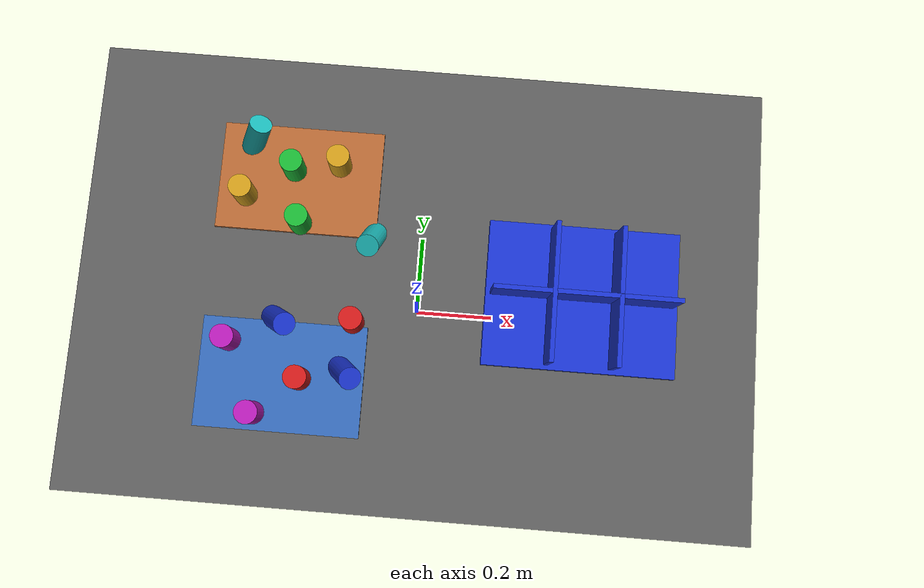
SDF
<?xml version="1.0" ?>
<sdf version="1.9">
  <!-- Standalone M1B scene.  The controller-backed Panda is spawned by the
       existing launch path; this file never alters the frozen M1A cube world. -->
  <world name="industrial_cylinder_v1">
    <physics name="bullet" type="bullet"><max_step_size>0.001</max_step_size><real_time_factor>1.0</real_time_factor></physics>
    <plugin name="gz::sim::systems::Physics" filename="gz-sim-physics-system"><engine><filename>gz-physics-bullet-featherstone-plugin</filename></engine></plugin>
    <plugin name="gz::sim::systems::UserCommands" filename="gz-sim-user-commands-system"/>
    <plugin name="gz::sim::systems::SceneBroadcaster" filename="gz-sim-scene-broadcaster-system"/>
    <plugin name="gz::sim::systems::Sensors" filename="gz-sim-sensors-system"><render_engine>ogre2</render_engine></plugin>
    <gravity>0 0 -9.81</gravity>
    <light type="directional" name="industrial_light"><pose>0 0 5 0 0 0</pose><direction>-0.3 0.2 -0.9</direction><diffuse>0.9 0.9 0.9 1</diffuse></light>
    <model name="industrial_work_table"><static>true</static><link name="link"><pose>0 0 0.4 0 0 0</pose><collision name="collision"><geometry><box><size>1.5 1.0 0.1</size></box></geometry></collision><visual name="visual"><geometry><box><size>1.5 1.0 0.1</size></box></geometry><material><diffuse>0.35 0.35 0.35 1</diffuse></material></visual></link></model>
    <model name="camera_fixture"><static>true</static><link name="camera_rgbd"><pose>-0.80 -0.80 1.40 0 0.77 0.93</pose><sensor name="front_rgbd" type="rgbd_camera"><always_on>1</always_on><update_rate>15</update_rate><topic>/xh/camera/rgbd</topic><camera><horizontal_fov>1.047</horizontal_fov><image><width>640</width><height>480</height><format>R8G8B8</format></image><clip><near>0.1</near><far>4.0</far></clip></camera></sensor></link></model>
    <model name="incoming_zone_a"><static>true</static><link name="link"><pose>-0.28 -0.22 0.455 0 0 0</pose><visual name="visual"><geometry><box><size>0.36 0.24 0.01</size></box></geometry><material><diffuse>0.2 0.4 0.7 1</diffuse></material></visual></link></model>
    <model name="incoming_zone_b"><static>true</static><link name="link"><pose>-0.28 0.22 0.455 0 0 0</pose><visual name="visual"><geometry><box><size>0.36 0.24 0.01</size></box></geometry><material><diffuse>0.7 0.4 0.2 1</diffuse></material></visual></link></model>
    <!-- M1B_RANDOM_PARTS_BEGIN -->
    <model name="cylinder_01"><pose>-0.2382 -0.2223 0.5000 0.0000 0.0000 1.9460</pose><link name="link"><inertial><mass>0.06</mass></inertial><collision name="collision"><geometry><cylinder><radius>0.025</radius><length>0.09</length></cylinder></geometry></collision><visual name="visual"><geometry><cylinder><radius>0.025</radius><length>0.09</length></cylinder></geometry><material><diffuse>0.800 0.100 0.100 1</diffuse><specular>0.15 0.15 0.15 1</specular></material></visual></link></model>
    <model name="cylinder_02"><pose>-0.2696 0.1207 0.5000 3.1416 0.0000 -0.9007</pose><link name="link"><inertial><mass>0.06</mass></inertial><collision name="collision"><geometry><cylinder><radius>0.025</radius><length>0.09</length></cylinder></geometry></collision><visual name="visual"><geometry><cylinder><radius>0.025</radius><length>0.09</length></cylinder></geometry><material><diffuse>0.100 0.700 0.200 1</diffuse><specular>0.15 0.15 0.15 1</specular></material></visual></link></model>
    <model name="cylinder_03"><pose>-0.1423 -0.2008 0.4800 0.4500 -0.3000 1.4231</pose><link name="link"><inertial><mass>0.06</mass></inertial><collision name="collision"><geometry><cylinder><radius>0.025</radius><length>0.09</length></cylinder></geometry></collision><visual name="visual"><geometry><cylinder><radius>0.025</radius><length>0.09</length></cylinder></geometry><material><diffuse>0.100 0.200 0.800 1</diffuse><specular>0.15 0.15 0.15 1</specular></material></visual></link></model>
    <model name="cylinder_04"><pose>-0.3964 0.1752 0.5000 0.0000 0.0000 -0.5118</pose><link name="link"><inertial><mass>0.06</mass></inertial><collision name="collision"><geometry><cylinder><radius>0.025</radius><length>0.09</length></cylinder></geometry></collision><visual name="visual"><geometry><cylinder><radius>0.025</radius><length>0.09</length></cylinder></geometry><material><diffuse>0.800 0.600 0.100 1</diffuse><specular>0.15 0.15 0.15 1</specular></material></visual></link></model>
    <model name="cylinder_05"><pose>-0.3989 -0.1493 0.5000 3.1416 0.0000 -2.7091</pose><link name="link"><inertial><mass>0.06</mass></inertial><collision name="collision"><geometry><cylinder><radius>0.025</radius><length>0.09</length></cylinder></geometry></collision><visual name="visual"><geometry><cylinder><radius>0.025</radius><length>0.09</length></cylinder></geometry><material><diffuse>0.700 0.100 0.700 1</diffuse><specular>0.15 0.15 0.15 1</specular></material></visual></link></model>
    <model name="cylinder_06"><pose>-0.3845 0.3055 0.4800 0.4500 -0.3000 3.0009</pose><link name="link"><inertial><mass>0.06</mass></inertial><collision name="collision"><geometry><cylinder><radius>0.025</radius><length>0.09</length></cylinder></geometry></collision><visual name="visual"><geometry><cylinder><radius>0.025</radius><length>0.09</length></cylinder></geometry><material><diffuse>0.100 0.700 0.700 1</diffuse><specular>0.15 0.15 0.15 1</specular></material></visual></link></model>
    <model name="cylinder_07"><pose>-0.1337 -0.0904 0.5000 0.0000 0.0000 -0.0489</pose><link name="link"><inertial><mass>0.06</mass></inertial><collision name="collision"><geometry><cylinder><radius>0.025</radius><length>0.09</length></cylinder></geometry></collision><visual name="visual"><geometry><cylinder><radius>0.025</radius><length>0.09</length></cylinder></geometry><material><diffuse>0.800 0.100 0.100 1</diffuse><specular>0.15 0.15 0.15 1</specular></material></visual></link></model>
    <model name="cylinder_08"><pose>-0.2925 0.2396 0.5000 3.1416 0.0000 1.7103</pose><link name="link"><inertial><mass>0.06</mass></inertial><collision name="collision"><geometry><cylinder><radius>0.025</radius><length>0.09</length></cylinder></geometry></collision><visual name="visual"><geometry><cylinder><radius>0.025</radius><length>0.09</length></cylinder></geometry><material><diffuse>0.100 0.700 0.200 1</diffuse><specular>0.15 0.15 0.15 1</specular></material></visual></link></model>
    <model name="cylinder_09"><pose>-0.2942 -0.1001 0.4800 0.4500 -0.3000 1.5985</pose><link name="link"><inertial><mass>0.06</mass></inertial><collision name="collision"><geometry><cylinder><radius>0.025</radius><length>0.09</length></cylinder></geometry></collision><visual name="visual"><geometry><cylinder><radius>0.025</radius><length>0.09</length></cylinder></geometry><material><diffuse>0.100 0.200 0.800 1</diffuse><specular>0.15 0.15 0.15 1</specular></material></visual></link></model>
    <model name="cylinder_10"><pose>-0.1922 0.2576 0.5000 0.0000 0.0000 -0.6175</pose><link name="link"><inertial><mass>0.06</mass></inertial><collision name="collision"><geometry><cylinder><radius>0.025</radius><length>0.09</length></cylinder></geometry></collision><visual name="visual"><geometry><cylinder><radius>0.025</radius><length>0.09</length></cylinder></geometry><material><diffuse>0.800 0.600 0.100 1</diffuse><specular>0.15 0.15 0.15 1</specular></material></visual></link></model>
    <model name="cylinder_11"><pose>-0.3318 -0.3025 0.5000 3.1416 0.0000 1.9383</pose><link name="link"><inertial><mass>0.06</mass></inertial><collision name="collision"><geometry><cylinder><radius>0.025</radius><length>0.09</length></cylinder></geometry></collision><visual name="visual"><geometry><cylinder><radius>0.025</radius><length>0.09</length></cylinder></geometry><material><diffuse>0.700 0.100 0.700 1</diffuse><specular>0.15 0.15 0.15 1</specular></material></visual></link></model>
    <model name="cylinder_12"><pose>-0.1072 0.0933 0.4800 0.4500 -0.3000 0.2799</pose><link name="link"><inertial><mass>0.06</mass></inertial><collision name="collision"><geometry><cylinder><radius>0.025</radius><length>0.09</length></cylinder></geometry></collision><visual name="visual"><geometry><cylinder><radius>0.025</radius><length>0.09</length></cylinder></geometry><material><diffuse>0.100 0.700 0.700 1</diffuse><specular>0.15 0.15 0.15 1</specular></material></visual></link></model>
    <!-- M1B_RANDOM_PARTS_END -->
    <model name="blue_partition_bin"><static>true</static><pose>0.36 0 0.45 0 0 0</pose><link name="link"><collision name="floor"><pose>0 0 0.01 0 0 0</pose><geometry><box><size>0.42 0.32 0.02</size></box></geometry></collision><visual name="floor_visual"><pose>0 0 0.01 0 0 0</pose><geometry><box><size>0.42 0.32 0.02</size></box></geometry><material><diffuse>0.1 0.2 0.8 1</diffuse></material></visual><visual name="row_divider"><pose>0 0 0.06 0 0 0</pose><geometry><box><size>0.40 0.01 0.10</size></box></geometry><material><diffuse>0.1 0.2 0.8 1</diffuse></material></visual><visual name="col_divider_a"><pose>-0.07 0 0.06 0 0 0</pose><geometry><box><size>0.01 0.30 0.10</size></box></geometry><material><diffuse>0.1 0.2 0.8 1</diffuse></material></visual><visual name="col_divider_b"><pose>0.07 0 0.06 0 0 0</pose><geometry><box><size>0.01 0.30 0.10</size></box></geometry><material><diffuse>0.1 0.2 0.8 1</diffuse></material></visual></link></model>
    <!-- Reserved only: second table, bin transport corridor, stackable-bin
         collision volume, and second arm mounting namespace. -->
  </world>
</sdf>
